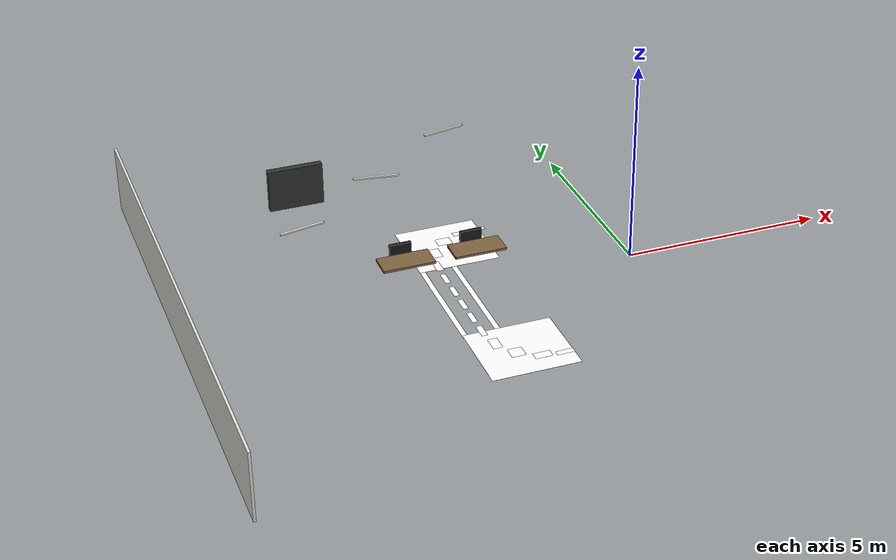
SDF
<sdf version="1.7">
 <world name="kookmin_xycar_track">
  <model name="white_line_cad_01">
   <static>true</static>
   <pose>-4.9850 -0.4400 0.0140 0 0 0</pose>
   <link name="white_line_cad_01_surface">
    <visual name="visual">
     <cast_shadows>false</cast_shadows>
     <geometry><plane><normal>0 0 1</normal><size>0.1300 3.1200</size></plane></geometry>
     <material>
      <ambient>1 1 1 1</ambient>
      <diffuse>1 1 1 1</diffuse>
      <emissive>0.9490 0.9490 0.9255 1</emissive>
      <pbr>
       <metal>
        <albedo_map>file://media/materials/textures/kookmin_white_line_cad_01.png</albedo_map>
        <roughness>1</roughness>
        <metalness>0</metalness>
       </metal>
      </pbr>
     </material>
    </visual>
   </link>
  </model>
  <model name="white_line_cad_02">
   <static>true</static>
   <pose>-4.1850 -0.4400 0.0142 0 0 0</pose>
   <link name="white_line_cad_02_surface">
    <visual name="visual">
     <cast_shadows>false</cast_shadows>
     <geometry><plane><normal>0 0 1</normal><size>0.1300 3.1200</size></plane></geometry>
     <material>
      <ambient>1 1 1 1</ambient>
      <diffuse>1 1 1 1</diffuse>
      <emissive>0.9490 0.9490 0.9255 1</emissive>
      <pbr>
       <metal>
        <albedo_map>file://media/materials/textures/kookmin_white_line_cad_02.png</albedo_map>
        <roughness>1</roughness>
        <metalness>0</metalness>
       </metal>
      </pbr>
     </material>
    </visual>
   </link>
  </model>
  <model name="white_line_cad_18">
   <static>true</static>
   <pose>-3.6800 1.5650 0.0174 0 0 0</pose>
   <link name="white_line_cad_18_surface">
    <visual name="visual">
     <cast_shadows>false</cast_shadows>
     <geometry><plane><normal>0 0 1</normal><size>1.1400 1.1300</size></plane></geometry>
     <material>
      <ambient>1 1 1 1</ambient>
      <diffuse>1 1 1 1</diffuse>
      <emissive>0.9490 0.9490 0.9255 1</emissive>
      <pbr>
       <metal>
        <albedo_map>file://media/materials/textures/kookmin_white_line_cad_18.png</albedo_map>
        <roughness>1</roughness>
        <metalness>0</metalness>
       </metal>
      </pbr>
     </material>
    </visual>
   </link>
  </model>
  <model name="white_line_cad_19">
   <static>true</static>
   <pose>-4.0300 1.9650 0.0176 0 0 0</pose>
   <link name="white_line_cad_19_surface">
    <visual name="visual">
     <cast_shadows>false</cast_shadows>
     <geometry><plane><normal>0 0 1</normal><size>2.0400 1.9300</size></plane></geometry>
     <material>
      <ambient>1 1 1 1</ambient>
      <diffuse>1 1 1 1</diffuse>
      <emissive>0.9490 0.9490 0.9255 1</emissive>
      <pbr>
       <metal>
        <albedo_map>file://media/materials/textures/kookmin_white_line_cad_19.png</albedo_map>
        <roughness>1</roughness>
        <metalness>0</metalness>
       </metal>
      </pbr>
     </material>
    </visual>
   </link>
  </model>
  <model name="white_line_cad_20">
   <static>true</static>
   <pose>-3.6750 -2.4450 0.0178 0 0 0</pose>
   <link name="white_line_cad_20_surface">
    <visual name="visual">
     <cast_shadows>false</cast_shadows>
     <geometry><plane><normal>0 0 1</normal><size>1.1700 1.1300</size></plane></geometry>
     <material>
      <ambient>1 1 1 1</ambient>
      <diffuse>1 1 1 1</diffuse>
      <emissive>0.9490 0.9490 0.9255 1</emissive>
      <pbr>
       <metal>
        <albedo_map>file://media/materials/textures/kookmin_white_line_cad_20.png</albedo_map>
        <roughness>1</roughness>
        <metalness>0</metalness>
       </metal>
      </pbr>
     </material>
    </visual>
   </link>
  </model>
  <model name="white_line_cad_21">
   <static>true</static>
   <pose>-3.9700 -2.8300 0.0180 0 0 0</pose>
   <link name="white_line_cad_21_surface">
    <visual name="visual">
     <cast_shadows>false</cast_shadows>
     <geometry><plane><normal>0 0 1</normal><size>2.1400 1.9000</size></plane></geometry>
     <material>
      <ambient>1 1 1 1</ambient>
      <diffuse>1 1 1 1</diffuse>
      <emissive>0.9490 0.9490 0.9255 1</emissive>
      <pbr>
       <metal>
        <albedo_map>file://media/materials/textures/kookmin_white_line_cad_21.png</albedo_map>
        <roughness>1</roughness>
        <metalness>0</metalness>
       </metal>
      </pbr>
     </material>
    </visual>
   </link>
  </model>
  <model name="yellow_centerline_dash_009">
   <static>true</static>
   <pose>-3.0750 2.4550 0.0281 0 0 0</pose>
   <link name="yellow_centerline_dash_009_surface">
    <visual name="visual">
     <cast_shadows>false</cast_shadows>
     <geometry><plane><normal>0 0 1</normal><size>0.4300 0.1300</size></plane></geometry>
     <material>
      <ambient>1 1 1 1</ambient>
      <diffuse>1 1 1 1</diffuse>
      <emissive>1.0000 0.7686 0.0471 1</emissive>
      <pbr>
       <metal>
        <albedo_map>file://media/materials/textures/kookmin_yellow_centerline_dash_009.png</albedo_map>
        <roughness>1</roughness>
        <metalness>0</metalness>
       </metal>
      </pbr>
     </material>
    </visual>
   </link>
  </model>
  <model name="yellow_centerline_dash_011">
   <static>true</static>
   <pose>-3.5250 2.4000 0.0285 0 0 0</pose>
   <link name="yellow_centerline_dash_011_surface">
    <visual name="visual">
     <cast_shadows>false</cast_shadows>
     <geometry><plane><normal>0 0 1</normal><size>0.3700 0.1600</size></plane></geometry>
     <material>
      <ambient>1 1 1 1</ambient>
      <diffuse>1 1 1 1</diffuse>
      <emissive>1.0000 0.7686 0.0471 1</emissive>
      <pbr>
       <metal>
        <albedo_map>file://media/materials/textures/kookmin_yellow_centerline_dash_011.png</albedo_map>
        <roughness>1</roughness>
        <metalness>0</metalness>
       </metal>
      </pbr>
     </material>
    </visual>
   </link>
  </model>
  <model name="yellow_centerline_dash_013">
   <static>true</static>
   <pose>-4.0350 2.1650 0.0289 0 0 0</pose>
   <link name="yellow_centerline_dash_013_surface">
    <visual name="visual">
     <cast_shadows>false</cast_shadows>
     <geometry><plane><normal>0 0 1</normal><size>0.3700 0.3100</size></plane></geometry>
     <material>
      <ambient>1 1 1 1</ambient>
      <diffuse>1 1 1 1</diffuse>
      <emissive>1.0000 0.7686 0.0471 1</emissive>
      <pbr>
       <metal>
        <albedo_map>file://media/materials/textures/kookmin_yellow_centerline_dash_013.png</albedo_map>
        <roughness>1</roughness>
        <metalness>0</metalness>
       </metal>
      </pbr>
     </material>
    </visual>
   </link>
  </model>
  <model name="yellow_centerline_dash_014">
   <static>true</static>
   <pose>-4.4100 1.7100 0.0291 0 0 0</pose>
   <link name="yellow_centerline_dash_014_surface">
    <visual name="visual">
     <cast_shadows>false</cast_shadows>
     <geometry><plane><normal>0 0 1</normal><size>0.2600 0.4000</size></plane></geometry>
     <material>
      <ambient>1 1 1 1</ambient>
      <diffuse>1 1 1 1</diffuse>
      <emissive>1.0000 0.7686 0.0471 1</emissive>
      <pbr>
       <metal>
        <albedo_map>file://media/materials/textures/kookmin_yellow_centerline_dash_014.png</albedo_map>
        <roughness>1</roughness>
        <metalness>0</metalness>
       </metal>
      </pbr>
     </material>
    </visual>
   </link>
  </model>
  <model name="yellow_centerline_dash_016">
   <static>true</static>
   <pose>-4.5550 1.1350 0.0295 0 0 0</pose>
   <link name="yellow_centerline_dash_016_surface">
    <visual name="visual">
     <cast_shadows>false</cast_shadows>
     <geometry><plane><normal>0 0 1</normal><size>0.1700 0.4300</size></plane></geometry>
     <material>
      <ambient>1 1 1 1</ambient>
      <diffuse>1 1 1 1</diffuse>
      <emissive>1.0000 0.7686 0.0471 1</emissive>
      <pbr>
       <metal>
        <albedo_map>file://media/materials/textures/kookmin_yellow_centerline_dash_016.png</albedo_map>
        <roughness>1</roughness>
        <metalness>0</metalness>
       </metal>
      </pbr>
     </material>
    </visual>
   </link>
  </model>
  <model name="yellow_centerline_dash_019">
   <static>true</static>
   <pose>-4.5750 0.5300 0.0301 0 0 0</pose>
   <link name="yellow_centerline_dash_019_surface">
    <visual name="visual">
     <cast_shadows>false</cast_shadows>
     <geometry><plane><normal>0 0 1</normal><size>0.1300 0.4200</size></plane></geometry>
     <material>
      <ambient>1 1 1 1</ambient>
      <diffuse>1 1 1 1</diffuse>
      <emissive>1.0000 0.7686 0.0471 1</emissive>
      <pbr>
       <metal>
        <albedo_map>file://media/materials/textures/kookmin_yellow_centerline_dash_019.png</albedo_map>
        <roughness>1</roughness>
        <metalness>0</metalness>
       </metal>
      </pbr>
     </material>
    </visual>
   </link>
  </model>
  <model name="yellow_centerline_dash_021">
   <static>true</static>
   <pose>-4.5750 -0.0700 0.0305 0 0 0</pose>
   <link name="yellow_centerline_dash_021_surface">
    <visual name="visual">
     <cast_shadows>false</cast_shadows>
     <geometry><plane><normal>0 0 1</normal><size>0.1300 0.4200</size></plane></geometry>
     <material>
      <ambient>1 1 1 1</ambient>
      <diffuse>1 1 1 1</diffuse>
      <emissive>1.0000 0.7686 0.0471 1</emissive>
      <pbr>
       <metal>
        <albedo_map>file://media/materials/textures/kookmin_yellow_centerline_dash_021.png</albedo_map>
        <roughness>1</roughness>
        <metalness>0</metalness>
       </metal>
      </pbr>
     </material>
    </visual>
   </link>
  </model>
  <model name="yellow_centerline_dash_023">
   <static>true</static>
   <pose>-4.5750 -0.6700 0.0309 0 0 0</pose>
   <link name="yellow_centerline_dash_023_surface">
    <visual name="visual">
     <cast_shadows>false</cast_shadows>
     <geometry><plane><normal>0 0 1</normal><size>0.1300 0.4200</size></plane></geometry>
     <material>
      <ambient>1 1 1 1</ambient>
      <diffuse>1 1 1 1</diffuse>
      <emissive>1.0000 0.7686 0.0471 1</emissive>
      <pbr>
       <metal>
        <albedo_map>file://media/materials/textures/kookmin_yellow_centerline_dash_023.png</albedo_map>
        <roughness>1</roughness>
        <metalness>0</metalness>
       </metal>
      </pbr>
     </material>
    </visual>
   </link>
  </model>
  <model name="yellow_centerline_dash_025">
   <static>true</static>
   <pose>-4.5750 -1.2700 0.0313 0 0 0</pose>
   <link name="yellow_centerline_dash_025_surface">
    <visual name="visual">
     <cast_shadows>false</cast_shadows>
     <geometry><plane><normal>0 0 1</normal><size>0.1300 0.4200</size></plane></geometry>
     <material>
      <ambient>1 1 1 1</ambient>
      <diffuse>1 1 1 1</diffuse>
      <emissive>1.0000 0.7686 0.0471 1</emissive>
      <pbr>
       <metal>
        <albedo_map>file://media/materials/textures/kookmin_yellow_centerline_dash_025.png</albedo_map>
        <roughness>1</roughness>
        <metalness>0</metalness>
       </metal>
      </pbr>
     </material>
    </visual>
   </link>
  </model>
  <model name="yellow_centerline_dash_028">
   <static>true</static>
   <pose>-4.5650 -1.8650 0.0319 0 0 0</pose>
   <link name="yellow_centerline_dash_028_surface">
    <visual name="visual">
     <cast_shadows>false</cast_shadows>
     <geometry><plane><normal>0 0 1</normal><size>0.1500 0.4100</size></plane></geometry>
     <material>
      <ambient>1 1 1 1</ambient>
      <diffuse>1 1 1 1</diffuse>
      <emissive>1.0000 0.7686 0.0471 1</emissive>
      <pbr>
       <metal>
        <albedo_map>file://media/materials/textures/kookmin_yellow_centerline_dash_028.png</albedo_map>
        <roughness>1</roughness>
        <metalness>0</metalness>
       </metal>
      </pbr>
     </material>
    </visual>
   </link>
  </model>
  <model name="yellow_centerline_dash_030">
   <static>true</static>
   <pose>-4.4650 -2.4500 0.0323 0 0 0</pose>
   <link name="yellow_centerline_dash_030_surface">
    <visual name="visual">
     <cast_shadows>false</cast_shadows>
     <geometry><plane><normal>0 0 1</normal><size>0.2300 0.4000</size></plane></geometry>
     <material>
      <ambient>1 1 1 1</ambient>
      <diffuse>1 1 1 1</diffuse>
      <emissive>1.0000 0.7686 0.0471 1</emissive>
      <pbr>
       <metal>
        <albedo_map>file://media/materials/textures/kookmin_yellow_centerline_dash_030.png</albedo_map>
        <roughness>1</roughness>
        <metalness>0</metalness>
       </metal>
      </pbr>
     </material>
    </visual>
   </link>
  </model>
  <model name="yellow_centerline_dash_032">
   <static>true</static>
   <pose>-4.1400 -2.9450 0.0327 0 0 0</pose>
   <link name="yellow_centerline_dash_032_surface">
    <visual name="visual">
     <cast_shadows>false</cast_shadows>
     <geometry><plane><normal>0 0 1</normal><size>0.3400 0.3300</size></plane></geometry>
     <material>
      <ambient>1 1 1 1</ambient>
      <diffuse>1 1 1 1</diffuse>
      <emissive>1.0000 0.7686 0.0471 1</emissive>
      <pbr>
       <metal>
        <albedo_map>file://media/materials/textures/kookmin_yellow_centerline_dash_032.png</albedo_map>
        <roughness>1</roughness>
        <metalness>0</metalness>
       </metal>
      </pbr>
     </material>
    </visual>
   </link>
  </model>
  <model name="yellow_centerline_dash_033">
   <static>true</static>
   <pose>-3.6300 -3.2400 0.0329 0 0 0</pose>
   <link name="yellow_centerline_dash_033_surface">
    <visual name="visual">
     <cast_shadows>false</cast_shadows>
     <geometry><plane><normal>0 0 1</normal><size>0.4200 0.2200</size></plane></geometry>
     <material>
      <ambient>1 1 1 1</ambient>
      <diffuse>1 1 1 1</diffuse>
      <emissive>1.0000 0.7686 0.0471 1</emissive>
      <pbr>
       <metal>
        <albedo_map>file://media/materials/textures/kookmin_yellow_centerline_dash_033.png</albedo_map>
        <roughness>1</roughness>
        <metalness>0</metalness>
       </metal>
      </pbr>
     </material>
    </visual>
   </link>
  </model>
  <model name="yellow_centerline_dash_035">
   <static>true</static>
   <pose>-3.1150 -3.3050 0.0333 0 0 0</pose>
   <link name="yellow_centerline_dash_035_surface">
    <visual name="visual">
     <cast_shadows>false</cast_shadows>
     <geometry><plane><normal>0 0 1</normal><size>0.4300 0.1500</size></plane></geometry>
     <material>
      <ambient>1 1 1 1</ambient>
      <diffuse>1 1 1 1</diffuse>
      <emissive>1.0000 0.7686 0.0471 1</emissive>
      <pbr>
       <metal>
        <albedo_map>file://media/materials/textures/kookmin_yellow_centerline_dash_035.png</albedo_map>
        <roughness>1</roughness>
        <metalness>0</metalness>
       </metal>
      </pbr>
     </material>
    </visual>
   </link>
  </model>
  <model name="room_west_wall">
   <static>true</static>
   <pose>-11.1000 0.0000 0.9000 0.000000 0.000000 0.000000</pose>
   <link name="west_wall">
    <visual name="visual">
     <geometry><box><size>0.0600 13.2000 1.7000</size></box></geometry>
     <material><ambient>0.8627 0.8706 0.8392 1</ambient><diffuse>0.8627 0.8706 0.8392 1</diffuse></material>
    </visual>
   </link>
  </model>
  <model name="room_black_display_stand">
   <static>true</static>
   <pose>-7.0000 4.9000 0.7500 0.000000 0.000000 0.000000</pose>
   <link name="black_display_stand">
    <visual name="visual">
     <geometry><box><size>1.4000 0.1800 1.1000</size></box></geometry>
     <material><ambient>0.1882 0.1961 0.1961 1</ambient><diffuse>0.1882 0.1961 0.1961 1</diffuse></material>
    </visual>
   </link>
  </model>
  <model name="room_table_top_0">
   <static>true</static>
   <pose>-5.4000 1.0000 0.4300 0.000000 0.000000 0.000000</pose>
   <link name="table_top_0">
    <visual name="visual">
     <geometry><box><size>1.3000 0.6200 0.0600</size></box></geometry>
     <material><ambient>0.4941 0.3843 0.2471 1</ambient><diffuse>0.4941 0.3843 0.2471 1</diffuse></material>
    </visual>
   </link>
  </model>
  <model name="room_chair_back_0">
   <static>true</static>
   <pose>-5.4000 1.4300 0.4200 0.000000 0.000000 0.000000</pose>
   <link name="chair_back_0">
    <visual name="visual">
     <geometry><box><size>0.5500 0.0800 0.5200</size></box></geometry>
     <material><ambient>0.0941 0.0980 0.1020 1</ambient><diffuse>0.0941 0.0980 0.1020 1</diffuse></material>
    </visual>
   </link>
  </model>
  <model name="room_chair_seat_0">
   <static>true</static>
   <pose>-5.4000 1.3400 0.2600 0.000000 0.000000 0.000000</pose>
   <link name="chair_seat_0">
    <visual name="visual">
     <geometry><box><size>0.4800 0.4000 0.0800</size></box></geometry>
     <material><ambient>0.0941 0.0980 0.1020 1</ambient><diffuse>0.0941 0.0980 0.1020 1</diffuse></material>
    </visual>
   </link>
  </model>
  <model name="room_table_top_1">
   <static>true</static>
   <pose>-3.6000 1.0000 0.4300 0.000000 0.000000 0.000000</pose>
   <link name="table_top_1">
    <visual name="visual">
     <geometry><box><size>1.3000 0.6200 0.0600</size></box></geometry>
     <material><ambient>0.4941 0.3843 0.2471 1</ambient><diffuse>0.4941 0.3843 0.2471 1</diffuse></material>
    </visual>
   </link>
  </model>
  <model name="room_chair_back_1">
   <static>true</static>
   <pose>-3.6000 1.4300 0.4200 0.000000 0.000000 0.000000</pose>
   <link name="chair_back_1">
    <visual name="visual">
     <geometry><box><size>0.5500 0.0800 0.5200</size></box></geometry>
     <material><ambient>0.0941 0.0980 0.1020 1</ambient><diffuse>0.0941 0.0980 0.1020 1</diffuse></material>
    </visual>
   </link>
  </model>
  <model name="room_chair_seat_1">
   <static>true</static>
   <pose>-3.6000 1.3400 0.2600 0.000000 0.000000 0.000000</pose>
   <link name="chair_seat_1">
    <visual name="visual">
     <geometry><box><size>0.4800 0.4000 0.0800</size></box></geometry>
     <material><ambient>0.0941 0.0980 0.1020 1</ambient><diffuse>0.0941 0.0980 0.1020 1</diffuse></material>
    </visual>
   </link>
  </model>
  <model name="room_ceiling_light_0">
   <static>true</static>
   <pose>-8.0000 0.5000 2.1500 0.000000 0.000000 0.200000</pose>
   <link name="ceiling_light_0">
    <visual name="visual">
     <geometry><box><size>1.1000 0.0550 0.0350</size></box></geometry>
     <material><ambient>0.9608 0.9608 0.9216 1</ambient><diffuse>0.9608 0.9608 0.9216 1</diffuse></material>
    </visual>
   </link>
  </model>
  <model name="room_ceiling_light_1">
   <static>true</static>
   <pose>-5.7000 2.2000 2.1500 0.000000 0.000000 -0.150000</pose>
   <link name="ceiling_light_1">
    <visual name="visual">
     <geometry><box><size>1.1000 0.0550 0.0350</size></box></geometry>
     <material><ambient>0.9608 0.9608 0.9216 1</ambient><diffuse>0.9608 0.9608 0.9216 1</diffuse></material>
    </visual>
   </link>
  </model>
  <model name="room_ceiling_light_2">
   <static>true</static>
   <pose>-3.4000 3.9000 2.1500 0.000000 0.000000 0.200000</pose>
   <link name="ceiling_light_2">
    <visual name="visual">
     <geometry><box><size>1.1000 0.0550 0.0350</size></box></geometry>
     <material><ambient>0.9608 0.9608 0.9216 1</ambient><diffuse>0.9608 0.9608 0.9216 1</diffuse></material>
    </visual>
   </link>
  </model>
 </world>
</sdf>
